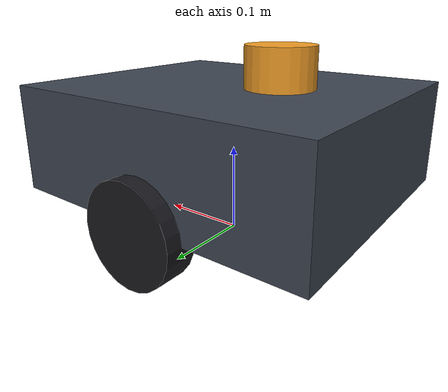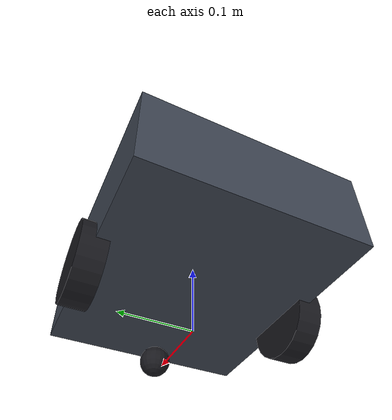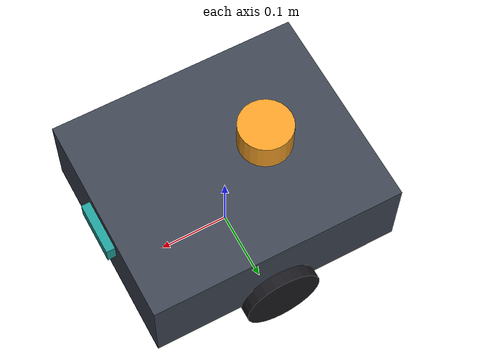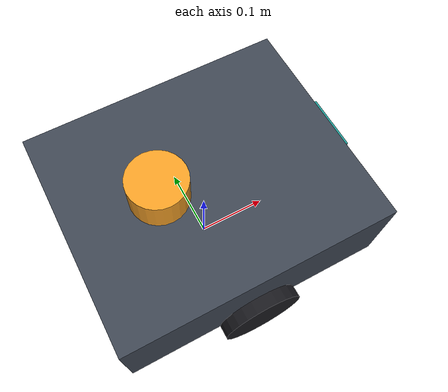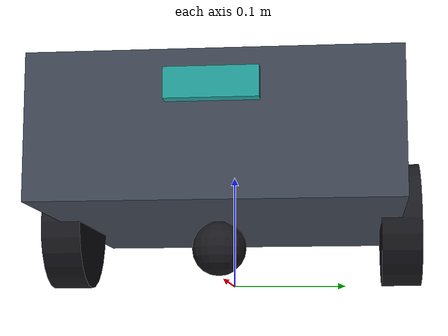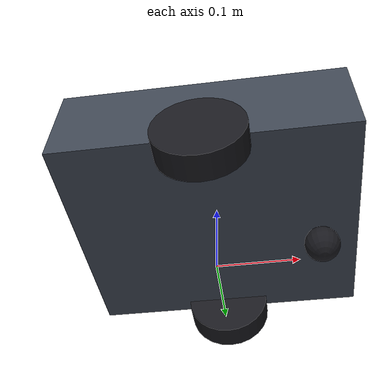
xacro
<?xml version="1.0"?>
<robot name="semantic_bot" xmlns:xacro="http://www.ros.org/wiki/xacro">

  <xacro:property name="chassis_length" value="0.36"/>
  <xacro:property name="chassis_width"  value="0.30"/>
  <xacro:property name="chassis_height" value="0.12"/>
  <xacro:property name="chassis_mass"   value="6.0"/>

  <xacro:property name="wheel_radius"     value="0.055"/>
  <xacro:property name="wheel_width"      value="0.035"/>
  <xacro:property name="wheel_mass"       value="0.35"/>
  <xacro:property name="wheel_separation" value="0.30"/>

  <xacro:property name="caster_radius" value="0.022"/>

  <material name="slate">   <color rgba="0.24 0.27 0.32 1.0"/></material>
  <material name="charcoal"><color rgba="0.10 0.10 0.12 1.0"/></material>
  <material name="amber">   <color rgba="0.95 0.62 0.15 1.0"/></material>
  <material name="teal">    <color rgba="0.13 0.62 0.60 1.0"/></material>

  <!-- Solid-cylinder inertia. Approximating a wheel as a point mass makes it
       spin up instantly and slip, which corrupts odometry — a physics bug that
       presents as a localisation bug. -->
  <xacro:macro name="cylinder_inertia" params="m r h">
    <inertial>
      <mass value="${m}"/>
      <inertia ixx="${m*(3*r*r + h*h)/12}" ixy="0.0" ixz="0.0"
               iyy="${m*(3*r*r + h*h)/12}" iyz="0.0"
               izz="${m*r*r/2}"/>
    </inertial>
  </xacro:macro>

  <xacro:macro name="box_inertia" params="m x y z">
    <inertial>
      <mass value="${m}"/>
      <inertia ixx="${m*(y*y + z*z)/12}" ixy="0.0" ixz="0.0"
               iyy="${m*(x*x + z*z)/12}" iyz="0.0"
               izz="${m*(x*x + y*y)/12}"/>
    </inertial>
  </xacro:macro>

  <xacro:macro name="sphere_inertia" params="m r">
    <inertial>
      <mass value="${m}"/>
      <inertia ixx="${2*m*r*r/5}" ixy="0.0" ixz="0.0"
               iyy="${2*m*r*r/5}" iyz="0.0"
               izz="${2*m*r*r/5}"/>
    </inertial>
  </xacro:macro>

  <!-- Base                                                                -->

  <link name="base_footprint"/>

  <joint name="base_joint" type="fixed">
    <parent link="base_footprint"/>
    <child  link="base_link"/>
    <origin xyz="0 0 ${wheel_radius}" rpy="0 0 0"/>
  </joint>

  <link name="base_link">
    <visual>
      <origin xyz="0 0 ${chassis_height/2}" rpy="0 0 0"/>
      <geometry>
        <box size="${chassis_length} ${chassis_width} ${chassis_height}"/>
      </geometry>
      <material name="slate"/>
    </visual>
    <collision>
      <origin xyz="0 0 ${chassis_height/2}" rpy="0 0 0"/>
      <geometry>
        <box size="${chassis_length} ${chassis_width} ${chassis_height}"/>
      </geometry>
    </collision>
    <xacro:box_inertia m="${chassis_mass}" x="${chassis_length}"
                       y="${chassis_width}" z="${chassis_height}"/>
  </link>

  <!-- Wheels                                                              -->

  <xacro:macro name="drive_wheel" params="prefix reflect">
    <link name="${prefix}_wheel_link">
      <visual>
        <origin xyz="0 0 0" rpy="${pi/2} 0 0"/>
        <geometry>
          <cylinder radius="${wheel_radius}" length="${wheel_width}"/>
        </geometry>
        <material name="charcoal"/>
      </visual>
      <collision>
        <origin xyz="0 0 0" rpy="${pi/2} 0 0"/>
        <geometry>
          <cylinder radius="${wheel_radius}" length="${wheel_width}"/>
        </geometry>
      </collision>
      <xacro:cylinder_inertia m="${wheel_mass}" r="${wheel_radius}"
                              h="${wheel_width}"/>
    </link>

    <joint name="${prefix}_wheel_joint" type="continuous">
      <parent link="base_link"/>
      <child  link="${prefix}_wheel_link"/>
      <origin xyz="0 ${reflect * wheel_separation/2} 0" rpy="0 0 0"/>
      <axis xyz="0 1 0"/>
      <dynamics damping="0.02" friction="0.001"/>
    </joint>
  </xacro:macro>

  <xacro:drive_wheel prefix="left"  reflect="1"/>
  <xacro:drive_wheel prefix="right" reflect="-1"/>

  <link name="caster_link">
    <visual>
      <geometry><sphere radius="${caster_radius}"/></geometry>
      <material name="charcoal"/>
    </visual>
    <collision>
      <geometry><sphere radius="${caster_radius}"/></geometry>
    </collision>
    <xacro:sphere_inertia m="0.08" r="${caster_radius}"/>
  </link>

  <joint name="caster_joint" type="fixed">
    <parent link="base_link"/>
    <child  link="caster_link"/>
    <origin xyz="${chassis_length/2 - 0.05} 0 ${caster_radius - wheel_radius}"/>
  </joint>

  <!-- Sensors                                                             -->

  <link name="lidar_link">
    <visual>
      <geometry><cylinder radius="0.038" length="0.045"/></geometry>
      <material name="amber"/>
    </visual>
    <collision>
      <geometry><cylinder radius="0.038" length="0.045"/></geometry>
    </collision>
    <xacro:cylinder_inertia m="0.16" r="0.038" h="0.045"/>
  </link>

  <joint name="lidar_joint" type="fixed">
    <parent link="base_link"/>
    <child  link="lidar_link"/>
    <!-- Mounted at the back so the chassis does not occlude the forward arc.
         A lidar in the geometric centre of a robot this shape sees its own
         body as a permanent obstacle ring. -->
    <origin xyz="-0.06 0 ${chassis_height + 0.023}" rpy="0 0 0"/>
  </joint>

  <link name="camera_link">
    <visual>
      <geometry><box size="0.025 0.075 0.025"/></geometry>
      <material name="teal"/>
    </visual>
    <collision>
      <geometry><box size="0.025 0.075 0.025"/></geometry>
    </collision>
    <xacro:box_inertia m="0.06" x="0.025" y="0.075" z="0.025"/>
  </link>

  <joint name="camera_joint" type="fixed">
    <parent link="base_link"/>
    <child  link="camera_link"/>
    <origin xyz="${chassis_length/2} 0 ${chassis_height*0.75}" rpy="0 0 0"/>
  </joint>

  <link name="camera_optical_link"/>
  <joint name="camera_optical_joint" type="fixed">
    <parent link="camera_link"/>
    <child  link="camera_optical_link"/>
    <origin xyz="0 0 0" rpy="${-pi/2} 0 ${-pi/2}"/>
  </joint>

  <xacro:include filename="$(find robot_bringup)/urdf/robot.gazebo.xacro"/>

</robot>
